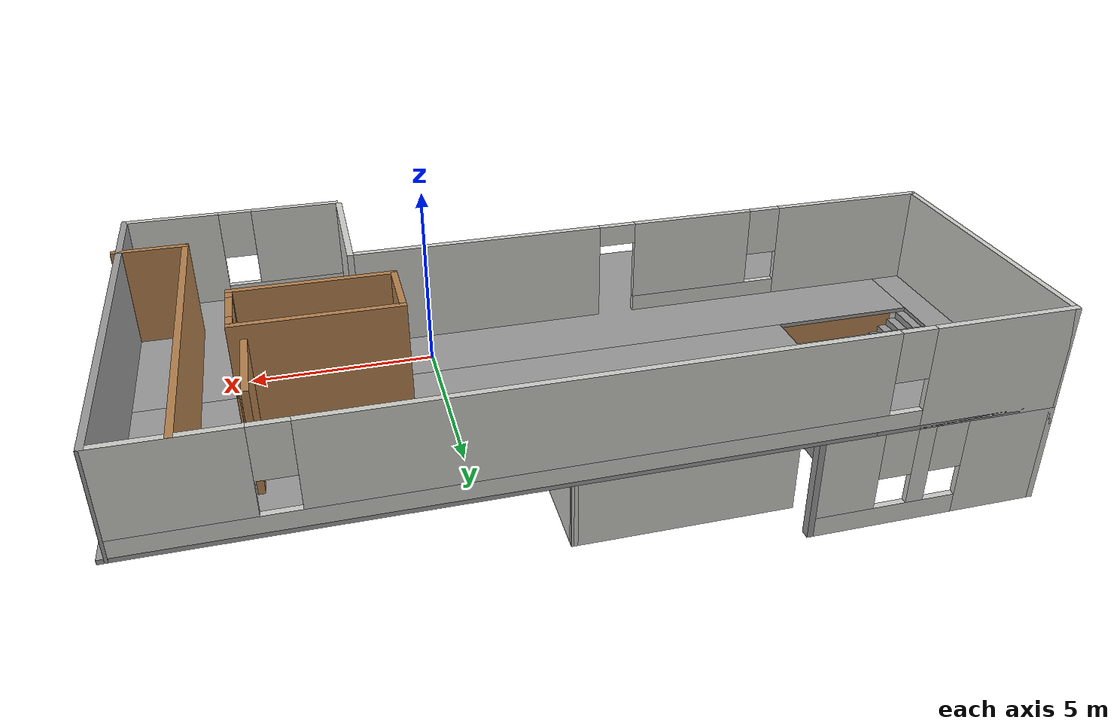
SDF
<?xml version='1.0'?>
<sdf version='1.7'>
  <model name='Building'>
    <pose>-2.51669 4.88848 0 0 -0 0</pose>
    <link name='Floor_3'>
      <pose>0 0.00168 2.5 0 -0 0</pose>
      <visual name='Floor_3_Visual_0'>
        <pose>-9.61237 0 0.05 0 -0 0</pose>
        <geometry>
          <box>
            <size>0.914633 10 0.1</size>
          </box>
        </geometry>
        <material>
          <script>
            <uri>file://media/materials/scripts/gazebo.material</uri>
            <name>Gazebo/Grey</name>
          </script>
          <ambient>1 1 1 1</ambient>
        </material>
        <meta>
          <layer>1</layer>
        </meta>
      </visual>
      <collision name='Floor_3_Collision_0'>
        <geometry>
          <box>
            <size>0.914633 10 0.1</size>
          </box>
        </geometry>
        <pose>-9.61237 0 0.05 0 -0 0</pose>
      </collision>
      <visual name='Floor_3_Visual_1'>
        <pose>0.457317 -2.44946 0.05 0 -0 0</pose>
        <geometry>
          <box>
            <size>19.2247 5.10108 0.1</size>
          </box>
        </geometry>
        <material>
          <script>
            <uri>file://media/materials/scripts/gazebo.material</uri>
            <name>Gazebo/Grey</name>
          </script>
          <ambient>1 1 1 1</ambient>
        </material>
        <meta>
          <layer>1</layer>
        </meta>
      </visual>
      <collision name='Floor_3_Collision_1'>
        <geometry>
          <box>
            <size>19.2247 5.10108 0.1</size>
          </box>
        </geometry>
        <pose>0.457317 -2.44946 0.05 0 -0 0</pose>
      </collision>
      <visual name='Floor_3_Visual_2'>
        <pose>2.20732 2.55054 0.05 0 -0 0</pose>
        <geometry>
          <box>
            <size>15.7247 4.89892 0.1</size>
          </box>
        </geometry>
        <material>
          <script>
            <uri>file://media/materials/scripts/gazebo.material</uri>
            <name>Gazebo/Grey</name>
          </script>
          <ambient>1 1 1 1</ambient>
        </material>
        <meta>
          <layer>1</layer>
        </meta>
      </visual>
      <collision name='Floor_3_Collision_2'>
        <geometry>
          <box>
            <size>15.7247 4.89892 0.1</size>
          </box>
        </geometry>
        <pose>2.20732 2.55054 0.05 0 -0 0</pose>
      </collision>
      <visual name='Floor_3_Visual_3'>
        <pose>-7.40505 3.05054 0.05 0 -0 0</pose>
        <geometry>
          <box>
            <size>3.5 3.89892 0.1</size>
          </box>
        </geometry>
        <material>
          <script>
            <uri>file://media/materials/scripts/gazebo.material</uri>
            <name>Gazebo/Grey</name>
          </script>
          <ambient>1 1 1 1</ambient>
        </material>
        <meta>
          <layer>1</layer>
        </meta>
      </visual>
      <collision name='Floor_3_Collision_3'>
        <geometry>
          <box>
            <size>3.5 3.89892 0.1</size>
          </box>
        </geometry>
        <pose>-7.40505 3.05054 0.05 0 -0 0</pose>
      </collision>
    </link>
    <link name='Stairs_2'>
      <visual name='Stairs_2_Visual_0'>
        <pose>-5.77172 0.602758 0.083333 0 -0 -1.5708</pose>
        <geometry>
          <box>
            <size>1 0.233333 0.166667</size>
          </box>
        </geometry>
        <material>
          <script>
            <uri>file://media/materials/scripts/gazebo.material</uri>
            <name>Gazebo/Grey</name>
          </script>
          <ambient>1 1 1 1</ambient>
        </material>
        <meta>
          <layer>0</layer>
        </meta>
      </visual>
      <collision name='Stairs_2_Collision_0'>
        <geometry>
          <box>
            <size>1 0.233333 0.166667</size>
          </box>
        </geometry>
        <pose>-5.77172 0.602758 0.083333 0 -0 -1.5708</pose>
      </collision>
      <visual name='Stairs_2_Visual_1'>
        <pose>-6.00505 0.602758 0.25 0 -0 -1.5708</pose>
        <geometry>
          <box>
            <size>1 0.233333 0.166667</size>
          </box>
        </geometry>
        <material>
          <script>
            <uri>file://media/materials/scripts/gazebo.material</uri>
            <name>Gazebo/Grey</name>
          </script>
          <ambient>1 1 1 1</ambient>
        </material>
        <meta>
          <layer>0</layer>
        </meta>
      </visual>
      <collision name='Stairs_2_Collision_1'>
        <geometry>
          <box>
            <size>1 0.233333 0.166667</size>
          </box>
        </geometry>
        <pose>-6.00505 0.602758 0.25 0 -0 -1.5708</pose>
      </collision>
      <visual name='Stairs_2_Visual_2'>
        <pose>-6.23839 0.602758 0.416667 0 -0 -1.5708</pose>
        <geometry>
          <box>
            <size>1 0.233333 0.166667</size>
          </box>
        </geometry>
        <material>
          <script>
            <uri>file://media/materials/scripts/gazebo.material</uri>
            <name>Gazebo/Grey</name>
          </script>
          <ambient>1 1 1 1</ambient>
        </material>
        <meta>
          <layer>0</layer>
        </meta>
      </visual>
      <collision name='Stairs_2_Collision_2'>
        <geometry>
          <box>
            <size>1 0.233333 0.166667</size>
          </box>
        </geometry>
        <pose>-6.23839 0.602758 0.416667 0 -0 -1.5708</pose>
      </collision>
      <visual name='Stairs_2_Visual_3'>
        <pose>-6.47172 0.602758 0.583333 0 -0 -1.5708</pose>
        <geometry>
          <box>
            <size>1 0.233333 0.166667</size>
          </box>
        </geometry>
        <material>
          <script>
            <uri>file://media/materials/scripts/gazebo.material</uri>
            <name>Gazebo/Grey</name>
          </script>
          <ambient>1 1 1 1</ambient>
        </material>
        <meta>
          <layer>0</layer>
        </meta>
      </visual>
      <collision name='Stairs_2_Collision_3'>
        <geometry>
          <box>
            <size>1 0.233333 0.166667</size>
          </box>
        </geometry>
        <pose>-6.47172 0.602758 0.583333 0 -0 -1.5708</pose>
      </collision>
      <visual name='Stairs_2_Visual_4'>
        <pose>-6.70505 0.602758 0.75 0 -0 -1.5708</pose>
        <geometry>
          <box>
            <size>1 0.233333 0.166667</size>
          </box>
        </geometry>
        <material>
          <script>
            <uri>file://media/materials/scripts/gazebo.material</uri>
            <name>Gazebo/Grey</name>
          </script>
          <ambient>1 1 1 1</ambient>
        </material>
        <meta>
          <layer>0</layer>
        </meta>
      </visual>
      <collision name='Stairs_2_Collision_4'>
        <geometry>
          <box>
            <size>1 0.233333 0.166667</size>
          </box>
        </geometry>
        <pose>-6.70505 0.602758 0.75 0 -0 -1.5708</pose>
      </collision>
      <visual name='Stairs_2_Visual_5'>
        <pose>-6.93839 0.602758 0.916667 0 -0 -1.5708</pose>
        <geometry>
          <box>
            <size>1 0.233333 0.166667</size>
          </box>
        </geometry>
        <material>
          <script>
            <uri>file://media/materials/scripts/gazebo.material</uri>
            <name>Gazebo/Grey</name>
          </script>
          <ambient>1 1 1 1</ambient>
        </material>
        <meta>
          <layer>0</layer>
        </meta>
      </visual>
      <collision name='Stairs_2_Collision_5'>
        <geometry>
          <box>
            <size>1 0.233333 0.166667</size>
          </box>
        </geometry>
        <pose>-6.93839 0.602758 0.916667 0 -0 -1.5708</pose>
      </collision>
      <visual name='Stairs_2_Visual_6'>
        <pose>-7.17172 0.602758 1.08333 0 -0 -1.5708</pose>
        <geometry>
          <box>
            <size>1 0.233333 0.166667</size>
          </box>
        </geometry>
        <material>
          <script>
            <uri>file://media/materials/scripts/gazebo.material</uri>
            <name>Gazebo/Grey</name>
          </script>
          <ambient>1 1 1 1</ambient>
        </material>
        <meta>
          <layer>0</layer>
        </meta>
      </visual>
      <collision name='Stairs_2_Collision_6'>
        <geometry>
          <box>
            <size>1 0.233333 0.166667</size>
          </box>
        </geometry>
        <pose>-7.17172 0.602758 1.08333 0 -0 -1.5708</pose>
      </collision>
      <visual name='Stairs_2_Visual_7'>
        <pose>-7.40505 0.602758 1.25 0 -0 -1.5708</pose>
        <geometry>
          <box>
            <size>1 0.233333 0.166667</size>
          </box>
        </geometry>
        <material>
          <script>
            <uri>file://media/materials/scripts/gazebo.material</uri>
            <name>Gazebo/Grey</name>
          </script>
          <ambient>1 1 1 1</ambient>
        </material>
        <meta>
          <layer>0</layer>
        </meta>
      </visual>
      <collision name='Stairs_2_Collision_7'>
        <geometry>
          <box>
            <size>1 0.233333 0.166667</size>
          </box>
        </geometry>
        <pose>-7.40505 0.602758 1.25 0 -0 -1.5708</pose>
      </collision>
      <visual name='Stairs_2_Visual_8'>
        <pose>-7.63839 0.602758 1.41667 0 -0 -1.5708</pose>
        <geometry>
          <box>
            <size>1 0.233333 0.166667</size>
          </box>
        </geometry>
        <material>
          <script>
            <uri>file://media/materials/scripts/gazebo.material</uri>
            <name>Gazebo/Grey</name>
          </script>
          <ambient>1 1 1 1</ambient>
        </material>
        <meta>
          <layer>0</layer>
        </meta>
      </visual>
      <collision name='Stairs_2_Collision_8'>
        <geometry>
          <box>
            <size>1 0.233333 0.166667</size>
          </box>
        </geometry>
        <pose>-7.63839 0.602758 1.41667 0 -0 -1.5708</pose>
      </collision>
      <visual name='Stairs_2_Visual_9'>
        <pose>-7.87172 0.602758 1.58333 0 -0 -1.5708</pose>
        <geometry>
          <box>
            <size>1 0.233333 0.166667</size>
          </box>
        </geometry>
        <material>
          <script>
            <uri>file://media/materials/scripts/gazebo.material</uri>
            <name>Gazebo/Grey</name>
          </script>
          <ambient>1 1 1 1</ambient>
        </material>
        <meta>
          <layer>0</layer>
        </meta>
      </visual>
      <collision name='Stairs_2_Collision_9'>
        <geometry>
          <box>
            <size>1 0.233333 0.166667</size>
          </box>
        </geometry>
        <pose>-7.87172 0.602758 1.58333 0 -0 -1.5708</pose>
      </collision>
      <visual name='Stairs_2_Visual_10'>
        <pose>-8.10505 0.602758 1.75 0 -0 -1.5708</pose>
        <geometry>
          <box>
            <size>1 0.233333 0.166667</size>
          </box>
        </geometry>
        <material>
          <script>
            <uri>file://media/materials/scripts/gazebo.material</uri>
            <name>Gazebo/Grey</name>
          </script>
          <ambient>1 1 1 1</ambient>
        </material>
        <meta>
          <layer>0</layer>
        </meta>
      </visual>
      <collision name='Stairs_2_Collision_10'>
        <geometry>
          <box>
            <size>1 0.233333 0.166667</size>
          </box>
        </geometry>
        <pose>-8.10505 0.602758 1.75 0 -0 -1.5708</pose>
      </collision>
      <visual name='Stairs_2_Visual_11'>
        <pose>-8.33839 0.602758 1.91667 0 -0 -1.5708</pose>
        <geometry>
          <box>
            <size>1 0.233333 0.166667</size>
          </box>
        </geometry>
        <material>
          <script>
            <uri>file://media/materials/scripts/gazebo.material</uri>
            <name>Gazebo/Grey</name>
          </script>
          <ambient>1 1 1 1</ambient>
        </material>
        <meta>
          <layer>0</layer>
        </meta>
      </visual>
      <collision name='Stairs_2_Collision_11'>
        <geometry>
          <box>
            <size>1 0.233333 0.166667</size>
          </box>
        </geometry>
        <pose>-8.33839 0.602758 1.91667 0 -0 -1.5708</pose>
      </collision>
      <visual name='Stairs_2_Visual_12'>
        <pose>-8.57172 0.602758 2.08333 0 -0 -1.5708</pose>
        <geometry>
          <box>
            <size>1 0.233333 0.166667</size>
          </box>
        </geometry>
        <material>
          <script>
            <uri>file://media/materials/scripts/gazebo.material</uri>
            <name>Gazebo/Grey</name>
          </script>
          <ambient>1 1 1 1</ambient>
        </material>
        <meta>
          <layer>0</layer>
        </meta>
      </visual>
      <collision name='Stairs_2_Collision_12'>
        <geometry>
          <box>
            <size>1 0.233333 0.166667</size>
          </box>
        </geometry>
        <pose>-8.57172 0.602758 2.08333 0 -0 -1.5708</pose>
      </collision>
      <visual name='Stairs_2_Visual_13'>
        <pose>-8.80505 0.602758 2.25 0 -0 -1.5708</pose>
        <geometry>
          <box>
            <size>1 0.233333 0.166667</size>
          </box>
        </geometry>
        <material>
          <script>
            <uri>file://media/materials/scripts/gazebo.material</uri>
            <name>Gazebo/Grey</name>
          </script>
          <ambient>1 1 1 1</ambient>
        </material>
        <meta>
          <layer>0</layer>
        </meta>
      </visual>
      <collision name='Stairs_2_Collision_13'>
        <geometry>
          <box>
            <size>1 0.233333 0.166667</size>
          </box>
        </geometry>
        <pose>-8.80505 0.602758 2.25 0 -0 -1.5708</pose>
      </collision>
      <visual name='Stairs_2_Visual_14'>
        <pose>-9.03839 0.602758 2.41667 0 -0 -1.5708</pose>
        <geometry>
          <box>
            <size>1 0.233333 0.166667</size>
          </box>
        </geometry>
        <material>
          <script>
            <uri>file://media/materials/scripts/gazebo.material</uri>
            <name>Gazebo/Grey</name>
          </script>
          <ambient>1 1 1 1</ambient>
        </material>
        <meta>
          <layer>0</layer>
        </meta>
      </visual>
      <collision name='Stairs_2_Collision_14'>
        <geometry>
          <box>
            <size>1 0.233333 0.166667</size>
          </box>
        </geometry>
        <pose>-9.03839 0.602758 2.41667 0 -0 -1.5708</pose>
      </collision>
    </link>
    <link name='Wall_103'>
      <collision name='Wall_103_Collision'>
        <geometry>
          <box>
            <size>10 0.15 2.5</size>
          </box>
        </geometry>
        <pose>0 0 1.25 0 -0 0</pose>
      </collision>
      <visual name='Wall_103_Visual'>
        <pose>0 0 1.25 0 -0 0</pose>
        <geometry>
          <box>
            <size>10 0.15 2.5</size>
          </box>
        </geometry>
        <material>
          <script>
            <uri>file://media/materials/scripts/gazebo.material</uri>
            <name>Gazebo/CeilingTiled</name>
          </script>
          <ambient>1 1 1 1</ambient>
        </material>
        <meta>
          <layer>0</layer>
        </meta>
      </visual>
      <pose>-9.99469 0.00168 0 0 -0 -1.5708</pose>
    </link>
    <link name='Wall_104'>
      <pose>-0.069687 -4.92332 0 0 -0 0</pose>
      <visual name='Wall_104_Visual_0'>
        <pose>-8.92953 0 1.25 0 -0 0</pose>
        <geometry>
          <box>
            <size>2.14095 0.15 2.5</size>
          </box>
        </geometry>
        <material>
          <script>
            <uri>file://media/materials/scripts/gazebo.material</uri>
            <name>Gazebo/CeilingTiled</name>
          </script>
          <ambient>1 1 1 1</ambient>
        </material>
        <meta>
          <layer>0</layer>
        </meta>
      </visual>
      <collision name='Wall_104_Collision_0'>
        <geometry>
          <box>
            <size>2.14095 0.15 2.5</size>
          </box>
        </geometry>
        <pose>-8.92953 0 1.25 0 -0 0</pose>
      </collision>
      <visual name='Wall_104_Visual_1'>
        <pose>1.07047 0 0.25 0 -0 0</pose>
        <geometry>
          <box>
            <size>17.8591 0.15 0.5</size>
          </box>
        </geometry>
        <material>
          <script>
            <uri>file://media/materials/scripts/gazebo.material</uri>
            <name>Gazebo/CeilingTiled</name>
          </script>
          <ambient>1 1 1 1</ambient>
        </material>
        <meta>
          <layer>0</layer>
        </meta>
      </visual>
      <collision name='Wall_104_Collision_1'>
        <geometry>
          <box>
            <size>17.8591 0.15 0.5</size>
          </box>
        </geometry>
        <pose>1.07047 0 0.25 0 -0 0</pose>
      </collision>
      <visual name='Wall_104_Visual_2'>
        <pose>-4.94486 0 1.5 0 -0 0</pose>
        <geometry>
          <box>
            <size>4.22839 0.15 2</size>
          </box>
        </geometry>
        <material>
          <script>
            <uri>file://media/materials/scripts/gazebo.material</uri>
            <name>Gazebo/CeilingTiled</name>
          </script>
          <ambient>1 1 1 1</ambient>
        </material>
        <meta>
          <layer>0</layer>
        </meta>
      </visual>
      <collision name='Wall_104_Collision_2'>
        <geometry>
          <box>
            <size>4.22839 0.15 2</size>
          </box>
        </geometry>
        <pose>-4.94486 0 1.5 0 -0 0</pose>
      </collision>
      <visual name='Wall_104_Visual_3'>
        <pose>1.16967 0 1.5 0 -0 0</pose>
        <geometry>
          <box>
            <size>6.40066 0.15 2</size>
          </box>
        </geometry>
        <material>
          <script>
            <uri>file://media/materials/scripts/gazebo.material</uri>
            <name>Gazebo/CeilingTiled</name>
          </script>
          <ambient>1 1 1 1</ambient>
        </material>
        <meta>
          <layer>0</layer>
        </meta>
      </visual>
      <collision name='Wall_104_Collision_3'>
        <geometry>
          <box>
            <size>6.40066 0.15 2</size>
          </box>
        </geometry>
        <pose>1.16967 0 1.5 0 -0 0</pose>
      </collision>
      <visual name='Wall_104_Visual_4'>
        <pose>7.585 0 1.5 0 -0 0</pose>
        <geometry>
          <box>
            <size>4.83 0.15 2</size>
          </box>
        </geometry>
        <material>
          <script>
            <uri>file://media/materials/scripts/gazebo.material</uri>
            <name>Gazebo/CeilingTiled</name>
          </script>
          <ambient>1 1 1 1</ambient>
        </material>
        <meta>
          <layer>0</layer>
        </meta>
      </visual>
      <collision name='Wall_104_Collision_4'>
        <geometry>
          <box>
            <size>4.83 0.15 2</size>
          </box>
        </geometry>
        <pose>7.585 0 1.5 0 -0 0</pose>
      </collision>
      <visual name='Wall_104_Visual_5'>
        <pose>-7.45905 0 1.9 0 -0 0</pose>
        <geometry>
          <box>
            <size>0.8 0.15 1.2</size>
          </box>
        </geometry>
        <material>
          <script>
            <uri>file://media/materials/scripts/gazebo.material</uri>
            <name>Gazebo/CeilingTiled</name>
          </script>
          <ambient>1 1 1 1</ambient>
        </material>
        <meta>
          <layer>0</layer>
        </meta>
      </visual>
      <collision name='Wall_104_Collision_5'>
        <geometry>
          <box>
            <size>0.8 0.15 1.2</size>
          </box>
        </geometry>
        <pose>-7.45905 0 1.9 0 -0 0</pose>
      </collision>
      <visual name='Wall_104_Visual_6'>
        <pose>-2.43066 0 1.9 0 -0 0</pose>
        <geometry>
          <box>
            <size>0.8 0.15 1.2</size>
          </box>
        </geometry>
        <material>
          <script>
            <uri>file://media/materials/scripts/gazebo.material</uri>
            <name>Gazebo/CeilingTiled</name>
          </script>
          <ambient>1 1 1 1</ambient>
        </material>
        <meta>
          <layer>0</layer>
        </meta>
      </visual>
      <collision name='Wall_104_Collision_6'>
        <geometry>
          <box>
            <size>0.8 0.15 1.2</size>
          </box>
        </geometry>
        <pose>-2.43066 0 1.9 0 -0 0</pose>
      </collision>
      <visual name='Wall_104_Visual_7'>
        <pose>4.77 0 1.9 0 -0 0</pose>
        <geometry>
          <box>
            <size>0.8 0.15 1.2</size>
          </box>
        </geometry>
        <material>
          <script>
            <uri>file://media/materials/scripts/gazebo.material</uri>
            <name>Gazebo/CeilingTiled</name>
          </script>
          <ambient>1 1 1 1</ambient>
        </material>
        <meta>
          <layer>0</layer>
        </meta>
      </visual>
      <collision name='Wall_104_Collision_7'>
        <geometry>
          <box>
            <size>0.8 0.15 1.2</size>
          </box>
        </geometry>
        <pose>4.77 0 1.9 0 -0 0</pose>
      </collision>
    </link>
    <link name='Wall_107'>
      <pose>9.85531 -2.49832 0 0 -0 1.5708</pose>
      <visual name='Wall_107_Visual_0'>
        <pose>-0.656953 0 1.25 0 -0 0</pose>
        <geometry>
          <box>
            <size>3.68609 0.15 2.5</size>
          </box>
        </geometry>
        <material>
          <script>
            <uri>file://media/materials/scripts/gazebo.material</uri>
            <name>Gazebo/Grey</name>
          </script>
          <ambient>1 1 1 1</ambient>
        </material>
        <meta>
          <layer>0</layer>
        </meta>
      </visual>
      <collision name='Wall_107_Collision_0'>
        <geometry>
          <box>
            <size>3.68609 0.15 2.5</size>
          </box>
        </geometry>
        <pose>-0.656953 0 1.25 0 -0 0</pose>
      </collision>
      <visual name='Wall_107_Visual_1'>
        <pose>2.29305 0 1.25 0 -0 0</pose>
        <geometry>
          <box>
            <size>0.413907 0.15 2.5</size>
          </box>
        </geometry>
        <material>
          <script>
            <uri>file://media/materials/scripts/gazebo.material</uri>
            <name>Gazebo/Grey</name>
          </script>
          <ambient>1 1 1 1</ambient>
        </material>
        <meta>
          <layer>0</layer>
        </meta>
      </visual>
      <collision name='Wall_107_Collision_1'>
        <geometry>
          <box>
            <size>0.413907 0.15 2.5</size>
          </box>
        </geometry>
        <pose>2.29305 0 1.25 0 -0 0</pose>
      </collision>
      <visual name='Wall_107_Visual_2'>
        <pose>1.63609 0 2.25 0 -0 0</pose>
        <geometry>
          <box>
            <size>0.9 0.15 0.5</size>
          </box>
        </geometry>
        <material>
          <script>
            <uri>file://media/materials/scripts/gazebo.material</uri>
            <name>Gazebo/Grey</name>
          </script>
          <ambient>1 1 1 1</ambient>
        </material>
        <meta>
          <layer>0</layer>
        </meta>
      </visual>
      <collision name='Wall_107_Collision_2'>
        <geometry>
          <box>
            <size>0.9 0.15 0.5</size>
          </box>
        </geometry>
        <pose>1.63609 0 2.25 0 -0 0</pose>
      </collision>
    </link>
    <link name='Wall_110'>
      <pose>-4.58491 1.81691 0 0 -0 3.14159</pose>
      <visual name='Wall_110_Visual_0'>
        <pose>-3.4635 0 1.25 0 -0 0</pose>
        <geometry>
          <box>
            <size>3.82299 0.15 2.5</size>
          </box>
        </geometry>
        <material>
          <script>
            <uri>file://media/materials/scripts/gazebo.material</uri>
            <name>Gazebo/Wood</name>
          </script>
          <ambient>1 1 1 1</ambient>
        </material>
        <meta>
          <layer>0</layer>
        </meta>
      </visual>
      <collision name='Wall_110_Collision_0'>
        <geometry>
          <box>
            <size>3.82299 0.15 2.5</size>
          </box>
        </geometry>
        <pose>-3.4635 0 1.25 0 -0 0</pose>
      </collision>
      <visual name='Wall_110_Visual_1'>
        <pose>-0.267294 0 1.25 0 -0 0</pose>
        <geometry>
          <box>
            <size>0.769426 0.15 2.5</size>
          </box>
        </geometry>
        <material>
          <script>
            <uri>file://media/materials/scripts/gazebo.material</uri>
            <name>Gazebo/Wood</name>
          </script>
          <ambient>1 1 1 1</ambient>
        </material>
        <meta>
          <layer>0</layer>
        </meta>
      </visual>
      <collision name='Wall_110_Collision_1'>
        <geometry>
          <box>
            <size>0.769426 0.15 2.5</size>
          </box>
        </geometry>
        <pose>-0.267294 0 1.25 0 -0 0</pose>
      </collision>
      <visual name='Wall_110_Visual_2'>
        <pose>3.19621 0 1.25 0 -0 0</pose>
        <geometry>
          <box>
            <size>4.35758 0.15 2.5</size>
          </box>
        </geometry>
        <material>
          <script>
            <uri>file://media/materials/scripts/gazebo.material</uri>
            <name>Gazebo/Wood</name>
          </script>
          <ambient>1 1 1 1</ambient>
        </material>
        <meta>
          <layer>0</layer>
        </meta>
      </visual>
      <collision name='Wall_110_Collision_2'>
        <geometry>
          <box>
            <size>4.35758 0.15 2.5</size>
          </box>
        </geometry>
        <pose>3.19621 0 1.25 0 -0 0</pose>
      </collision>
      <visual name='Wall_110_Visual_3'>
        <pose>-1.10201 0 2.25 0 -0 0</pose>
        <geometry>
          <box>
            <size>0.9 0.15 0.5</size>
          </box>
        </geometry>
        <material>
          <script>
            <uri>file://media/materials/scripts/gazebo.material</uri>
            <name>Gazebo/Wood</name>
          </script>
          <ambient>1 1 1 1</ambient>
        </material>
        <meta>
          <layer>0</layer>
        </meta>
      </visual>
      <collision name='Wall_110_Collision_3'>
        <geometry>
          <box>
            <size>0.9 0.15 0.5</size>
          </box>
        </geometry>
        <pose>-1.10201 0 2.25 0 -0 0</pose>
      </collision>
      <visual name='Wall_110_Visual_4'>
        <pose>0.567419 0 2.25 0 -0 0</pose>
        <geometry>
          <box>
            <size>0.9 0.15 0.5</size>
          </box>
        </geometry>
        <material>
          <script>
            <uri>file://media/materials/scripts/gazebo.material</uri>
            <name>Gazebo/Wood</name>
          </script>
          <ambient>1 1 1 1</ambient>
        </material>
        <meta>
          <layer>0</layer>
        </meta>
      </visual>
      <collision name='Wall_110_Collision_4'>
        <geometry>
          <box>
            <size>0.9 0.15 0.5</size>
          </box>
        </geometry>
        <pose>0.567419 0 2.25 0 -0 0</pose>
      </collision>
    </link>
    <link name='Wall_112'>
      <pose>-7.19469 4.92668 0 0 -0 0</pose>
      <visual name='Wall_112_Visual_0'>
        <pose>-1.79447 0 1.25 0 -0 0</pose>
        <geometry>
          <box>
            <size>2.16106 0.15 2.5</size>
          </box>
        </geometry>
        <material>
          <script>
            <uri>file://media/materials/scripts/gazebo.material</uri>
            <name>Gazebo/CeilingTiled</name>
          </script>
          <ambient>1 1 1 1</ambient>
        </material>
        <meta>
          <layer>0</layer>
        </meta>
      </visual>
      <collision name='Wall_112_Collision_0'>
        <geometry>
          <box>
            <size>2.16106 0.15 2.5</size>
          </box>
        </geometry>
        <pose>-1.79447 0 1.25 0 -0 0</pose>
      </collision>
      <visual name='Wall_112_Visual_1'>
        <pose>1.08053 0 0.25 0 -0 0</pose>
        <geometry>
          <box>
            <size>3.58894 0.15 0.5</size>
          </box>
        </geometry>
        <material>
          <script>
            <uri>file://media/materials/scripts/gazebo.material</uri>
            <name>Gazebo/CeilingTiled</name>
          </script>
          <ambient>1 1 1 1</ambient>
        </material>
        <meta>
          <layer>0</layer>
        </meta>
      </visual>
      <collision name='Wall_112_Collision_1'>
        <geometry>
          <box>
            <size>3.58894 0.15 0.5</size>
          </box>
        </geometry>
        <pose>1.08053 0 0.25 0 -0 0</pose>
      </collision>
      <visual name='Wall_112_Visual_2'>
        <pose>0.299522 0 1.5 0 -0 0</pose>
        <geometry>
          <box>
            <size>0.426928 0.15 2</size>
          </box>
        </geometry>
        <material>
          <script>
            <uri>file://media/materials/scripts/gazebo.material</uri>
            <name>Gazebo/CeilingTiled</name>
          </script>
          <ambient>1 1 1 1</ambient>
        </material>
        <meta>
          <layer>0</layer>
        </meta>
      </visual>
      <collision name='Wall_112_Collision_2'>
        <geometry>
          <box>
            <size>0.426928 0.15 2</size>
          </box>
        </geometry>
        <pose>0.299522 0 1.5 0 -0 0</pose>
      </collision>
      <visual name='Wall_112_Visual_3'>
        <pose>2.09399 0 1.5 0 -0 0</pose>
        <geometry>
          <box>
            <size>1.56201 0.15 2</size>
          </box>
        </geometry>
        <material>
          <script>
            <uri>file://media/materials/scripts/gazebo.material</uri>
            <name>Gazebo/CeilingTiled</name>
          </script>
          <ambient>1 1 1 1</ambient>
        </material>
        <meta>
          <layer>0</layer>
        </meta>
      </visual>
      <collision name='Wall_112_Collision_3'>
        <geometry>
          <box>
            <size>1.56201 0.15 2</size>
          </box>
        </geometry>
        <pose>2.09399 0 1.5 0 -0 0</pose>
      </collision>
      <visual name='Wall_112_Visual_4'>
        <pose>-0.313942 0 1.9 0 -0 0</pose>
        <geometry>
          <box>
            <size>0.8 0.15 1.2</size>
          </box>
        </geometry>
        <material>
          <script>
            <uri>file://media/materials/scripts/gazebo.material</uri>
            <name>Gazebo/CeilingTiled</name>
          </script>
          <ambient>1 1 1 1</ambient>
        </material>
        <meta>
          <layer>0</layer>
        </meta>
      </visual>
      <collision name='Wall_112_Collision_4'>
        <geometry>
          <box>
            <size>0.8 0.15 1.2</size>
          </box>
        </geometry>
        <pose>-0.313942 0 1.9 0 -0 0</pose>
      </collision>
      <visual name='Wall_112_Visual_5'>
        <pose>0.912986 0 1.9 0 -0 0</pose>
        <geometry>
          <box>
            <size>0.8 0.15 1.2</size>
          </box>
        </geometry>
        <material>
          <script>
            <uri>file://media/materials/scripts/gazebo.material</uri>
            <name>Gazebo/CeilingTiled</name>
          </script>
          <ambient>1 1 1 1</ambient>
        </material>
        <meta>
          <layer>0</layer>
        </meta>
      </visual>
      <collision name='Wall_112_Collision_5'>
        <geometry>
          <box>
            <size>0.8 0.15 1.2</size>
          </box>
        </geometry>
        <pose>0.912986 0 1.9 0 -0 0</pose>
      </collision>
    </link>
    <link name='Wall_113'>
      <pose>-4.39469 3.37668 0 0 -0 -1.5708</pose>
      <visual name='Wall_113_Visual_0'>
        <pose>-1.5127 0 1.25 0 -0 0</pose>
        <geometry>
          <box>
            <size>0.224605 0.15 2.5</size>
          </box>
        </geometry>
        <material>
          <script>
            <uri>file://media/materials/scripts/gazebo.material</uri>
            <name>Gazebo/Grey</name>
          </script>
          <ambient>1 1 1 1</ambient>
        </material>
        <meta>
          <layer>0</layer>
        </meta>
      </visual>
      <collision name='Wall_113_Collision_0'>
        <geometry>
          <box>
            <size>0.224605 0.15 2.5</size>
          </box>
        </geometry>
        <pose>-1.5127 0 1.25 0 -0 0</pose>
      </collision>
      <visual name='Wall_113_Visual_1'>
        <pose>0.562303 0 1.25 0 -0 0</pose>
        <geometry>
          <box>
            <size>2.1254 0.15 2.5</size>
          </box>
        </geometry>
        <material>
          <script>
            <uri>file://media/materials/scripts/gazebo.material</uri>
            <name>Gazebo/Grey</name>
          </script>
          <ambient>1 1 1 1</ambient>
        </material>
        <meta>
          <layer>0</layer>
        </meta>
      </visual>
      <collision name='Wall_113_Collision_1'>
        <geometry>
          <box>
            <size>2.1254 0.15 2.5</size>
          </box>
        </geometry>
        <pose>0.562303 0 1.25 0 -0 0</pose>
      </collision>
      <visual name='Wall_113_Visual_2'>
        <pose>-0.950395 0 2.25 0 -0 0</pose>
        <geometry>
          <box>
            <size>0.9 0.15 0.5</size>
          </box>
        </geometry>
        <material>
          <script>
            <uri>file://media/materials/scripts/gazebo.material</uri>
            <name>Gazebo/Grey</name>
          </script>
          <ambient>1 1 1 1</ambient>
        </material>
        <meta>
          <layer>0</layer>
        </meta>
      </visual>
      <collision name='Wall_113_Collision_2'>
        <geometry>
          <box>
            <size>0.9 0.15 0.5</size>
          </box>
        </geometry>
        <pose>-0.950395 0 2.25 0 -0 0</pose>
      </collision>
    </link>
    <link name='Wall_115'>
      <collision name='Wall_115_Collision'>
        <geometry>
          <box>
            <size>5.30307 0.15 2.5</size>
          </box>
        </geometry>
        <pose>0 0 1.25 0 -0 0</pose>
      </collision>
      <visual name='Wall_115_Visual'>
        <pose>0 0 1.25 0 -0 0</pose>
        <geometry>
          <box>
            <size>5.30307 0.15 2.5</size>
          </box>
        </geometry>
        <material>
          <script>
            <uri>file://media/materials/scripts/gazebo.material</uri>
            <name>Gazebo/CeilingTiled</name>
          </script>
          <ambient>1 1 1 1</ambient>
        </material>
        <meta>
          <layer>0</layer>
        </meta>
      </visual>
      <pose>-1.82122 3.87699 0 0 -0 -0.000121</pose>
    </link>
    <link name='Wall_116'>
      <collision name='Wall_116_Collision'>
        <geometry>
          <box>
            <size>2.21017 0.15 2.5</size>
          </box>
        </geometry>
        <pose>0 0 1.25 0 -0 0</pose>
      </collision>
      <visual name='Wall_116_Visual'>
        <pose>0 0 1.25 0 -0 0</pose>
        <geometry>
          <box>
            <size>2.21017 0.15 2.5</size>
          </box>
        </geometry>
        <material>
          <script>
            <uri>file://media/materials/scripts/gazebo.material</uri>
            <name>Gazebo/CeilingTiled</name>
          </script>
          <ambient>1 1 1 1</ambient>
        </material>
        <meta>
          <layer>0</layer>
        </meta>
      </visual>
      <pose>0.745256 2.84679 0 0 -0 -1.58056</pose>
    </link>
    <link name='Wall_124'>
      <pose>-1.53189 0.824232 0 0 -0 -1.5708</pose>
      <visual name='Wall_124_Visual_0'>
        <pose>-0.765115 0 1.25 0 -0 0</pose>
        <geometry>
          <box>
            <size>0.46977 0.15 2.5</size>
          </box>
        </geometry>
        <material>
          <script>
            <uri>file://media/materials/scripts/gazebo.material</uri>
            <name>Gazebo/Grey</name>
          </script>
          <ambient>1 1 1 1</ambient>
        </material>
        <meta>
          <layer>0</layer>
        </meta>
      </visual>
      <collision name='Wall_124_Collision_0'>
        <geometry>
          <box>
            <size>0.46977 0.15 2.5</size>
          </box>
        </geometry>
        <pose>-0.765115 0 1.25 0 -0 0</pose>
      </collision>
      <visual name='Wall_124_Visual_1'>
        <pose>0.684885 0 1.25 0 -0 0</pose>
        <geometry>
          <box>
            <size>0.63023 0.15 2.5</size>
          </box>
        </geometry>
        <material>
          <script>
            <uri>file://media/materials/scripts/gazebo.material</uri>
            <name>Gazebo/Grey</name>
          </script>
          <ambient>1 1 1 1</ambient>
        </material>
        <meta>
          <layer>0</layer>
        </meta>
      </visual>
      <collision name='Wall_124_Collision_1'>
        <geometry>
          <box>
            <size>0.63023 0.15 2.5</size>
          </box>
        </geometry>
        <pose>0.684885 0 1.25 0 -0 0</pose>
      </collision>
      <visual name='Wall_124_Visual_2'>
        <pose>-0.08023 0 2.25 0 -0 0</pose>
        <geometry>
          <box>
            <size>0.9 0.15 0.5</size>
          </box>
        </geometry>
        <material>
          <script>
            <uri>file://media/materials/scripts/gazebo.material</uri>
            <name>Gazebo/Grey</name>
          </script>
          <ambient>1 1 1 1</ambient>
        </material>
        <meta>
          <layer>0</layer>
        </meta>
      </visual>
      <collision name='Wall_124_Collision_2'>
        <geometry>
          <box>
            <size>0.9 0.15 0.5</size>
          </box>
        </geometry>
        <pose>-0.08023 0 2.25 0 -0 0</pose>
      </collision>
    </link>
    <link name='Wall_125'>
      <collision name='Wall_125_Collision'>
        <geometry>
          <box>
            <size>11.5 0.15 2.5</size>
          </box>
        </geometry>
        <pose>0 0 1.25 0 -0 0</pose>
      </collision>
      <visual name='Wall_125_Visual'>
        <pose>0 0 1.25 0 -0 0</pose>
        <geometry>
          <box>
            <size>11.5 0.15 2.5</size>
          </box>
        </geometry>
        <material>
          <script>
            <uri>file://media/materials/scripts/gazebo.material</uri>
            <name>Gazebo/Grey</name>
          </script>
          <ambient>1 1 1 1</ambient>
        </material>
        <meta>
          <layer>0</layer>
        </meta>
      </visual>
      <pose>4.14311 -0.100768 0 0 -0 0</pose>
    </link>
    <link name='Wall_127'>
      <collision name='Wall_127_Collision'>
        <geometry>
          <box>
            <size>2.04066 0.15 2.5</size>
          </box>
        </geometry>
        <pose>0 0 1.25 0 -0 0</pose>
      </collision>
      <visual name='Wall_127_Visual'>
        <pose>0 0 1.25 0 -0 0</pose>
        <geometry>
          <box>
            <size>2.04066 0.15 2.5</size>
          </box>
        </geometry>
        <material>
          <script>
            <uri>file://media/materials/scripts/gazebo.material</uri>
            <name>Gazebo/CeilingTiled</name>
          </script>
          <ambient>1 1 1 1</ambient>
        </material>
        <meta>
          <layer>0</layer>
        </meta>
      </visual>
      <pose>0.745256 0.871794 0 0 -0 -1.56016</pose>
    </link>
    <link name='Wall_129'>
      <pose>-0.053852 -1.7015 0 0 -0 3.14159</pose>
      <visual name='Wall_129_Visual_0'>
        <pose>-7.48284 0 1.25 0 -0 0</pose>
        <geometry>
          <box>
            <size>5.03432 0.15 2.5</size>
          </box>
        </geometry>
        <material>
          <script>
            <uri>file://media/materials/scripts/gazebo.material</uri>
            <name>Gazebo/Wood</name>
          </script>
          <ambient>1 1 1 1</ambient>
        </material>
        <meta>
          <layer>0</layer>
        </meta>
      </visual>
      <collision name='Wall_129_Collision_0'>
        <geometry>
          <box>
            <size>5.03432 0.15 2.5</size>
          </box>
        </geometry>
        <pose>-7.48284 0 1.25 0 -0 0</pose>
      </collision>
      <visual name='Wall_129_Visual_1'>
        <pose>-0.120355 0 1.25 0 -0 0</pose>
        <geometry>
          <box>
            <size>7.89066 0.15 2.5</size>
          </box>
        </geometry>
        <material>
          <script>
            <uri>file://media/materials/scripts/gazebo.material</uri>
            <name>Gazebo/Wood</name>
          </script>
          <ambient>1 1 1 1</ambient>
        </material>
        <meta>
          <layer>0</layer>
        </meta>
      </visual>
      <collision name='Wall_129_Collision_1'>
        <geometry>
          <box>
            <size>7.89066 0.15 2.5</size>
          </box>
        </geometry>
        <pose>-0.120355 0 1.25 0 -0 0</pose>
      </collision>
      <visual name='Wall_129_Visual_2'>
        <pose>7.36249 0 1.25 0 -0 0</pose>
        <geometry>
          <box>
            <size>5.27503 0.15 2.5</size>
          </box>
        </geometry>
        <material>
          <script>
            <uri>file://media/materials/scripts/gazebo.material</uri>
            <name>Gazebo/Wood</name>
          </script>
          <ambient>1 1 1 1</ambient>
        </material>
        <meta>
          <layer>0</layer>
        </meta>
      </visual>
      <collision name='Wall_129_Collision_2'>
        <geometry>
          <box>
            <size>5.27503 0.15 2.5</size>
          </box>
        </geometry>
        <pose>7.36249 0 1.25 0 -0 0</pose>
      </collision>
      <visual name='Wall_129_Visual_3'>
        <pose>-4.51568 0 2.25 0 -0 0</pose>
        <geometry>
          <box>
            <size>0.9 0.15 0.5</size>
          </box>
        </geometry>
        <material>
          <script>
            <uri>file://media/materials/scripts/gazebo.material</uri>
            <name>Gazebo/Wood</name>
          </script>
          <ambient>1 1 1 1</ambient>
        </material>
        <meta>
          <layer>0</layer>
        </meta>
      </visual>
      <collision name='Wall_129_Collision_3'>
        <geometry>
          <box>
            <size>0.9 0.15 0.5</size>
          </box>
        </geometry>
        <pose>-4.51568 0 2.25 0 -0 0</pose>
      </collision>
      <visual name='Wall_129_Visual_4'>
        <pose>4.27497 0 2.25 0 -0 0</pose>
        <geometry>
          <box>
            <size>0.9 0.15 0.5</size>
          </box>
        </geometry>
        <material>
          <script>
            <uri>file://media/materials/scripts/gazebo.material</uri>
            <name>Gazebo/Wood</name>
          </script>
          <ambient>1 1 1 1</ambient>
        </material>
        <meta>
          <layer>0</layer>
        </meta>
      </visual>
      <collision name='Wall_129_Collision_4'>
        <geometry>
          <box>
            <size>0.9 0.15 0.5</size>
          </box>
        </geometry>
        <pose>4.27497 0 2.25 0 -0 0</pose>
      </collision>
    </link>
    <link name='Wall_131'>
      <collision name='Wall_131_Collision'>
        <geometry>
          <box>
            <size>3.25 0.15 2.5</size>
          </box>
        </geometry>
        <pose>0 0 1.25 0 -0 0</pose>
      </collision>
      <visual name='Wall_131_Visual'>
        <pose>0 0 1.25 0 -0 0</pose>
        <geometry>
          <box>
            <size>3.25 0.15 2.5</size>
          </box>
        </geometry>
        <material>
          <script>
            <uri>file://media/materials/scripts/gazebo.material</uri>
            <name>Gazebo/Grey</name>
          </script>
          <ambient>1 1 1 1</ambient>
        </material>
        <meta>
          <layer>0</layer>
        </meta>
      </visual>
      <pose>-0.406887 -3.29173 0 0 -0 -1.5708</pose>
    </link>
    <link name='Wall_133'>
      <collision name='Wall_133_Collision'>
        <geometry>
          <box>
            <size>1.25 0.15 2.5</size>
          </box>
        </geometry>
        <pose>0 0 1.25 0 -0 0</pose>
      </collision>
      <visual name='Wall_133_Visual'>
        <pose>0 0 1.25 0 -0 0</pose>
        <geometry>
          <box>
            <size>1.25 0.15 2.5</size>
          </box>
        </geometry>
        <material>
          <script>
            <uri>file://media/materials/scripts/gazebo.material</uri>
            <name>Gazebo/Wood</name>
          </script>
          <ambient>1 1 1 1</ambient>
        </material>
        <meta>
          <layer>0</layer>
        </meta>
      </visual>
      <pose>-5.15369 -2.27161 0 0 -0 -1.5708</pose>
    </link>
    <link name='Wall_135'>
      <collision name='Wall_135_Collision'>
        <geometry>
          <box>
            <size>1.25 0.15 2.5</size>
          </box>
        </geometry>
        <pose>0 0 1.25 0 -0 0</pose>
      </collision>
      <visual name='Wall_135_Visual'>
        <pose>0 0 1.25 0 -0 0</pose>
        <geometry>
          <box>
            <size>1.25 0.15 2.5</size>
          </box>
        </geometry>
        <material>
          <script>
            <uri>file://media/materials/scripts/gazebo.material</uri>
            <name>Gazebo/Grey</name>
          </script>
          <ambient>1 1 1 1</ambient>
        </material>
        <meta>
          <layer>0</layer>
        </meta>
      </visual>
      <pose>-5.11968 -4.37692 0 0 -0 1.5708</pose>
    </link>
    <link name='Wall_187'>
      <pose>-2.6349 -1.6724 2.5 0 -0 0</pose>
      <visual name='Wall_187_Visual_0'>
        <pose>-5.45618 0 1.25 0 -0 0</pose>
        <geometry>
          <box>
            <size>3.83764 0.15 2.5</size>
          </box>
        </geometry>
        <material>
          <script>
            <uri>file://media/materials/scripts/gazebo.material</uri>
            <name>Gazebo/CeilingTiled</name>
          </script>
          <ambient>1 1 1 1</ambient>
        </material>
        <meta>
          <layer>1</layer>
        </meta>
      </visual>
      <collision name='Wall_187_Collision_0'>
        <geometry>
          <box>
            <size>3.83764 0.15 2.5</size>
          </box>
        </geometry>
        <pose>-5.45618 0 1.25 0 -0 0</pose>
      </collision>
      <visual name='Wall_187_Visual_1'>
        <pose>4.3027 0 1.25 0 -0 0</pose>
        <geometry>
          <box>
            <size>6.14459 0.15 2.5</size>
          </box>
        </geometry>
        <material>
          <script>
            <uri>file://media/materials/scripts/gazebo.material</uri>
            <name>Gazebo/CeilingTiled</name>
          </script>
          <ambient>1 1 1 1</ambient>
        </material>
        <meta>
          <layer>1</layer>
        </meta>
      </visual>
      <collision name='Wall_187_Collision_1'>
        <geometry>
          <box>
            <size>6.14459 0.15 2.5</size>
          </box>
        </geometry>
        <pose>4.3027 0 1.25 0 -0 0</pose>
      </collision>
      <visual name='Wall_187_Visual_2'>
        <pose>-1.60348 0 0.25 0 -0 0</pose>
        <geometry>
          <box>
            <size>3.86777 0.15 0.5</size>
          </box>
        </geometry>
        <material>
          <script>
            <uri>file://media/materials/scripts/gazebo.material</uri>
            <name>Gazebo/CeilingTiled</name>
          </script>
          <ambient>1 1 1 1</ambient>
        </material>
        <meta>
          <layer>1</layer>
        </meta>
      </visual>
      <collision name='Wall_187_Collision_2'>
        <geometry>
          <box>
            <size>3.86777 0.15 0.5</size>
          </box>
        </geometry>
        <pose>-1.60348 0 0.25 0 -0 0</pose>
      </collision>
      <visual name='Wall_187_Visual_3'>
        <pose>-1.20348 0 1.5 0 -0 0</pose>
        <geometry>
          <box>
            <size>3.06777 0.15 2</size>
          </box>
        </geometry>
        <material>
          <script>
            <uri>file://media/materials/scripts/gazebo.material</uri>
            <name>Gazebo/CeilingTiled</name>
          </script>
          <ambient>1 1 1 1</ambient>
        </material>
        <meta>
          <layer>1</layer>
        </meta>
      </visual>
      <collision name='Wall_187_Collision_3'>
        <geometry>
          <box>
            <size>3.06777 0.15 2</size>
          </box>
        </geometry>
        <pose>-1.20348 0 1.5 0 -0 0</pose>
      </collision>
      <visual name='Wall_187_Visual_4'>
        <pose>-3.13736 0 1.9 0 -0 0</pose>
        <geometry>
          <box>
            <size>0.8 0.15 1.2</size>
          </box>
        </geometry>
        <material>
          <script>
            <uri>file://media/materials/scripts/gazebo.material</uri>
            <name>Gazebo/CeilingTiled</name>
          </script>
          <ambient>1 1 1 1</ambient>
        </material>
        <meta>
          <layer>1</layer>
        </meta>
      </visual>
      <collision name='Wall_187_Collision_4'>
        <geometry>
          <box>
            <size>0.8 0.15 1.2</size>
          </box>
        </geometry>
        <pose>-3.13736 0 1.9 0 -0 0</pose>
      </collision>
      <visual name='Wall_187_Visual_5'>
        <pose>0.780409 0 2.25 0 -0 0</pose>
        <geometry>
          <box>
            <size>0.9 0.15 0.5</size>
          </box>
        </geometry>
        <material>
          <script>
            <uri>file://media/materials/scripts/gazebo.material</uri>
            <name>Gazebo/CeilingTiled</name>
          </script>
          <ambient>1 1 1 1</ambient>
        </material>
        <meta>
          <layer>1</layer>
        </meta>
      </visual>
      <collision name='Wall_187_Collision_5'>
        <geometry>
          <box>
            <size>0.9 0.15 0.5</size>
          </box>
        </geometry>
        <pose>0.780409 0 2.25 0 -0 0</pose>
      </collision>
    </link>
    <link name='Wall_188'>
      <collision name='Wall_188_Collision'>
        <geometry>
          <box>
            <size>3.25 0.15 2.5</size>
          </box>
        </geometry>
        <pose>0 0 1.25 0 -0 0</pose>
      </collision>
      <visual name='Wall_188_Visual'>
        <pose>0 0 1.25 0 -0 0</pose>
        <geometry>
          <box>
            <size>3.25 0.15 2.5</size>
          </box>
        </geometry>
        <material>
          <script>
            <uri>file://media/materials/scripts/gazebo.material</uri>
            <name>Gazebo/CeilingTiled</name>
          </script>
          <ambient>1 1 1 1</ambient>
        </material>
        <meta>
          <layer>1</layer>
        </meta>
      </visual>
      <pose>4.6651 -3.2224 2.5 0 -0 -1.5708</pose>
    </link>
    <link name='Wall_190'>
      <pose>7.3228 -4.92332 2.5 0 -0 3.14159</pose>
      <visual name='Wall_190_Visual_0'>
        <pose>-1.48876 0 1.25 0 -0 0</pose>
        <geometry>
          <box>
            <size>2.30746 0.15 2.5</size>
          </box>
        </geometry>
        <material>
          <script>
            <uri>file://media/materials/scripts/gazebo.material</uri>
            <name>Gazebo/CeilingTiled</name>
          </script>
          <ambient>1 1 1 1</ambient>
        </material>
        <meta>
          <layer>1</layer>
        </meta>
      </visual>
      <collision name='Wall_190_Collision_0'>
        <geometry>
          <box>
            <size>2.30746 0.15 2.5</size>
          </box>
        </geometry>
        <pose>-1.48876 0 1.25 0 -0 0</pose>
      </collision>
      <visual name='Wall_190_Visual_1'>
        <pose>1.15373 0 0.25 0 -0 0</pose>
        <geometry>
          <box>
            <size>2.97752 0.15 0.5</size>
          </box>
        </geometry>
        <material>
          <script>
            <uri>file://media/materials/scripts/gazebo.material</uri>
            <name>Gazebo/CeilingTiled</name>
          </script>
          <ambient>1 1 1 1</ambient>
        </material>
        <meta>
          <layer>1</layer>
        </meta>
      </visual>
      <collision name='Wall_190_Collision_1'>
        <geometry>
          <box>
            <size>2.97752 0.15 0.5</size>
          </box>
        </geometry>
        <pose>1.15373 0 0.25 0 -0 0</pose>
      </collision>
      <visual name='Wall_190_Visual_2'>
        <pose>1.55373 0 1.5 0 -0 0</pose>
        <geometry>
          <box>
            <size>2.17752 0.15 2</size>
          </box>
        </geometry>
        <material>
          <script>
            <uri>file://media/materials/scripts/gazebo.material</uri>
            <name>Gazebo/CeilingTiled</name>
          </script>
          <ambient>1 1 1 1</ambient>
        </material>
        <meta>
          <layer>1</layer>
        </meta>
      </visual>
      <collision name='Wall_190_Collision_2'>
        <geometry>
          <box>
            <size>2.17752 0.15 2</size>
          </box>
        </geometry>
        <pose>1.55373 0 1.5 0 -0 0</pose>
      </collision>
      <visual name='Wall_190_Visual_3'>
        <pose>0.064969 0 1.9 0 -0 0</pose>
        <geometry>
          <box>
            <size>0.8 0.15 1.2</size>
          </box>
        </geometry>
        <material>
          <script>
            <uri>file://media/materials/scripts/gazebo.material</uri>
            <name>Gazebo/CeilingTiled</name>
          </script>
          <ambient>1 1 1 1</ambient>
        </material>
        <meta>
          <layer>1</layer>
        </meta>
      </visual>
      <collision name='Wall_190_Collision_3'>
        <geometry>
          <box>
            <size>0.8 0.15 1.2</size>
          </box>
        </geometry>
        <pose>0.064969 0 1.9 0 -0 0</pose>
      </collision>
    </link>
    <link name='Wall_192'>
      <pose>-0.069687 4.92668 2.5 0 -0 0</pose>
      <visual name='Wall_192_Visual_0'>
        <pose>-8.29615 0 1.25 0 -0 0</pose>
        <geometry>
          <box>
            <size>3.4077 0.15 2.5</size>
          </box>
        </geometry>
        <material>
          <script>
            <uri>file://media/materials/scripts/gazebo.material</uri>
            <name>Gazebo/CeilingTiled</name>
          </script>
          <ambient>1 1 1 1</ambient>
        </material>
        <meta>
          <layer>1</layer>
        </meta>
      </visual>
      <collision name='Wall_192_Collision_0'>
        <geometry>
          <box>
            <size>3.4077 0.15 2.5</size>
          </box>
        </geometry>
        <pose>-8.29615 0 1.25 0 -0 0</pose>
      </collision>
      <visual name='Wall_192_Visual_1'>
        <pose>1.70385 0 0.25 0 -0 0</pose>
        <geometry>
          <box>
            <size>16.5923 0.15 0.5</size>
          </box>
        </geometry>
        <material>
          <script>
            <uri>file://media/materials/scripts/gazebo.material</uri>
            <name>Gazebo/CeilingTiled</name>
          </script>
          <ambient>1 1 1 1</ambient>
        </material>
        <meta>
          <layer>1</layer>
        </meta>
      </visual>
      <collision name='Wall_192_Collision_1'>
        <geometry>
          <box>
            <size>16.5923 0.15 0.5</size>
          </box>
        </geometry>
        <pose>1.70385 0 0.25 0 -0 0</pose>
      </collision>
      <visual name='Wall_192_Visual_2'>
        <pose>0.296516 0 1.5 0 -0 0</pose>
        <geometry>
          <box>
            <size>12.1776 0.15 2</size>
          </box>
        </geometry>
        <material>
          <script>
            <uri>file://media/materials/scripts/gazebo.material</uri>
            <name>Gazebo/CeilingTiled</name>
          </script>
          <ambient>1 1 1 1</ambient>
        </material>
        <meta>
          <layer>1</layer>
        </meta>
      </visual>
      <collision name='Wall_192_Collision_2'>
        <geometry>
          <box>
            <size>12.1776 0.15 2</size>
          </box>
        </geometry>
        <pose>0.296516 0 1.5 0 -0 0</pose>
      </collision>
      <visual name='Wall_192_Visual_3'>
        <pose>8.59266 0 1.5 0 -0 0</pose>
        <geometry>
          <box>
            <size>2.81467 0.15 2</size>
          </box>
        </geometry>
        <material>
          <script>
            <uri>file://media/materials/scripts/gazebo.material</uri>
            <name>Gazebo/CeilingTiled</name>
          </script>
          <ambient>1 1 1 1</ambient>
        </material>
        <meta>
          <layer>1</layer>
        </meta>
      </visual>
      <collision name='Wall_192_Collision_3'>
        <geometry>
          <box>
            <size>2.81467 0.15 2</size>
          </box>
        </geometry>
        <pose>8.59266 0 1.5 0 -0 0</pose>
      </collision>
      <visual name='Wall_192_Visual_4'>
        <pose>-6.1923 0 1.9 0 -0 0</pose>
        <geometry>
          <box>
            <size>0.8 0.15 1.2</size>
          </box>
        </geometry>
        <material>
          <script>
            <uri>file://media/materials/scripts/gazebo.material</uri>
            <name>Gazebo/CeilingTiled</name>
          </script>
          <ambient>1 1 1 1</ambient>
        </material>
        <meta>
          <layer>1</layer>
        </meta>
      </visual>
      <collision name='Wall_192_Collision_4'>
        <geometry>
          <box>
            <size>0.8 0.15 1.2</size>
          </box>
        </geometry>
        <pose>-6.1923 0 1.9 0 -0 0</pose>
      </collision>
      <visual name='Wall_192_Visual_5'>
        <pose>6.78533 0 1.9 0 -0 0</pose>
        <geometry>
          <box>
            <size>0.8 0.15 1.2</size>
          </box>
        </geometry>
        <material>
          <script>
            <uri>file://media/materials/scripts/gazebo.material</uri>
            <name>Gazebo/CeilingTiled</name>
          </script>
          <ambient>1 1 1 1</ambient>
        </material>
        <meta>
          <layer>1</layer>
        </meta>
      </visual>
      <collision name='Wall_192_Collision_5'>
        <geometry>
          <box>
            <size>0.8 0.15 1.2</size>
          </box>
        </geometry>
        <pose>6.78533 0 1.9 0 -0 0</pose>
      </collision>
    </link>
    <link name='Wall_194'>
      <collision name='Wall_194_Collision'>
        <geometry>
          <box>
            <size>10 0.15 2.5</size>
          </box>
        </geometry>
        <pose>0 0 1.25 0 -0 0</pose>
      </collision>
      <visual name='Wall_194_Visual'>
        <pose>0 0 1.25 0 -0 0</pose>
        <geometry>
          <box>
            <size>10 0.15 2.5</size>
          </box>
        </geometry>
        <material>
          <script>
            <uri>file://media/materials/scripts/gazebo.material</uri>
            <name>Gazebo/Grey</name>
          </script>
          <ambient>1 1 1 1</ambient>
        </material>
        <meta>
          <layer>1</layer>
        </meta>
      </visual>
      <pose>9.8728 0.00168 2.5 0 -0 1.57435</pose>
    </link>
    <link name='Wall_196'>
      <collision name='Wall_196_Collision'>
        <geometry>
          <box>
            <size>1.75 0.15 2.5</size>
          </box>
        </geometry>
        <pose>0 0 1.25 0 -0 0</pose>
      </collision>
      <visual name='Wall_196_Visual'>
        <pose>0 0 1.25 0 -0 0</pose>
        <geometry>
          <box>
            <size>1.75 0.15 2.5</size>
          </box>
        </geometry>
        <material>
          <script>
            <uri>file://media/materials/scripts/gazebo.material</uri>
            <name>Gazebo/Wood</name>
          </script>
          <ambient>1 1 1 1</ambient>
        </material>
        <meta>
          <layer>1</layer>
        </meta>
      </visual>
      <pose>3.7948 0.326015 2.5 0 -0 -1.5708</pose>
    </link>
    <link name='Wall_197'>
      <collision name='Wall_197_Collision'>
        <geometry>
          <box>
            <size>3.75 0.15 2.5</size>
          </box>
        </geometry>
        <pose>0 0 1.25 0 -0 0</pose>
      </collision>
      <visual name='Wall_197_Visual'>
        <pose>0 0 1.25 0 -0 0</pose>
        <geometry>
          <box>
            <size>3.75 0.15 2.5</size>
          </box>
        </geometry>
        <material>
          <script>
            <uri>file://media/materials/scripts/gazebo.material</uri>
            <name>Gazebo/Wood</name>
          </script>
          <ambient>1 1 1 1</ambient>
        </material>
        <meta>
          <layer>1</layer>
        </meta>
      </visual>
      <pose>5.5948 -0.473984 2.5 0 -0 0</pose>
    </link>
    <link name='Wall_198'>
      <pose>7.3948 0.326015 2.5 0 -0 1.5708</pose>
      <visual name='Wall_198_Visual_0'>
        <pose>-0.682262 0 1.25 0 -0 0</pose>
        <geometry>
          <box>
            <size>0.385477 0.15 2.5</size>
          </box>
        </geometry>
        <material>
          <script>
            <uri>file://media/materials/scripts/gazebo.material</uri>
            <name>Gazebo/Wood</name>
          </script>
          <ambient>1 1 1 1</ambient>
        </material>
        <meta>
          <layer>1</layer>
        </meta>
      </visual>
      <collision name='Wall_198_Collision_0'>
        <geometry>
          <box>
            <size>0.385477 0.15 2.5</size>
          </box>
        </geometry>
        <pose>-0.682262 0 1.25 0 -0 0</pose>
      </collision>
      <visual name='Wall_198_Visual_1'>
        <pose>0.642738 0 1.25 0 -0 0</pose>
        <geometry>
          <box>
            <size>0.464523 0.15 2.5</size>
          </box>
        </geometry>
        <material>
          <script>
            <uri>file://media/materials/scripts/gazebo.material</uri>
            <name>Gazebo/Wood</name>
          </script>
          <ambient>1 1 1 1</ambient>
        </material>
        <meta>
          <layer>1</layer>
        </meta>
      </visual>
      <collision name='Wall_198_Collision_1'>
        <geometry>
          <box>
            <size>0.464523 0.15 2.5</size>
          </box>
        </geometry>
        <pose>0.642738 0 1.25 0 -0 0</pose>
      </collision>
      <visual name='Wall_198_Visual_2'>
        <pose>-0.039523 0 2.25 0 -0 0</pose>
        <geometry>
          <box>
            <size>0.9 0.15 0.5</size>
          </box>
        </geometry>
        <material>
          <script>
            <uri>file://media/materials/scripts/gazebo.material</uri>
            <name>Gazebo/Wood</name>
          </script>
          <ambient>1 1 1 1</ambient>
        </material>
        <meta>
          <layer>1</layer>
        </meta>
      </visual>
      <collision name='Wall_198_Collision_2'>
        <geometry>
          <box>
            <size>0.9 0.15 0.5</size>
          </box>
        </geometry>
        <pose>-0.039523 0 2.25 0 -0 0</pose>
      </collision>
    </link>
    <link name='Wall_199'>
      <collision name='Wall_199_Collision'>
        <geometry>
          <box>
            <size>3.75 0.15 2.5</size>
          </box>
        </geometry>
        <pose>0 0 1.25 0 -0 0</pose>
      </collision>
      <visual name='Wall_199_Visual'>
        <pose>0 0 1.25 0 -0 0</pose>
        <geometry>
          <box>
            <size>3.75 0.15 2.5</size>
          </box>
        </geometry>
        <material>
          <script>
            <uri>file://media/materials/scripts/gazebo.material</uri>
            <name>Gazebo/Wood</name>
          </script>
          <ambient>1 1 1 1</ambient>
        </material>
        <meta>
          <layer>1</layer>
        </meta>
      </visual>
      <pose>5.5948 1.12602 2.5 0 -0 3.14159</pose>
    </link>
    <link name='Wall_201'>
      <collision name='Wall_201_Collision'>
        <geometry>
          <box>
            <size>2 0.15 2.5</size>
          </box>
        </geometry>
        <pose>0 0 1.25 0 -0 0</pose>
      </collision>
      <visual name='Wall_201_Visual'>
        <pose>0 0 1.25 0 -0 0</pose>
        <geometry>
          <box>
            <size>2 0.15 2.5</size>
          </box>
        </geometry>
        <material>
          <script>
            <uri>file://media/materials/scripts/gazebo.material</uri>
            <name>Gazebo/Wood</name>
          </script>
          <ambient>1 1 1 1</ambient>
        </material>
        <meta>
          <layer>1</layer>
        </meta>
      </visual>
      <pose>7.10042 2.78954 2.5 0 -0 -1.5708</pose>
    </link>
    <link name='Wall_203'>
      <collision name='Wall_203_Collision'>
        <geometry>
          <box>
            <size>8.25 0.15 2.5</size>
          </box>
        </geometry>
        <pose>0 0 1.25 0 -0 0</pose>
      </collision>
      <visual name='Wall_203_Visual'>
        <pose>0 0 1.25 0 -0 0</pose>
        <geometry>
          <box>
            <size>8.25 0.15 2.5</size>
          </box>
        </geometry>
        <material>
          <script>
            <uri>file://media/materials/scripts/gazebo.material</uri>
            <name>Gazebo/Wood</name>
          </script>
          <ambient>1 1 1 1</ambient>
        </material>
        <meta>
          <layer>1</layer>
        </meta>
      </visual>
      <pose>8.39469 0.871359 2.5 0 -0 -1.5708</pose>
    </link>
    <link name='Wall_204'>
      <collision name='Wall_204_Collision'>
        <geometry>
          <box>
            <size>1.75 0.15 2.5</size>
          </box>
        </geometry>
        <pose>0 0 1.25 0 -0 0</pose>
      </collision>
      <visual name='Wall_204_Visual'>
        <pose>0 0 1.25 0 -0 0</pose>
        <geometry>
          <box>
            <size>1.75 0.15 2.5</size>
          </box>
        </geometry>
        <material>
          <script>
            <uri>file://media/materials/scripts/gazebo.material</uri>
            <name>Gazebo/Wood</name>
          </script>
          <ambient>1 1 1 1</ambient>
        </material>
        <meta>
          <layer>1</layer>
        </meta>
      </visual>
      <pose>9.19469 -3.17864 2.5 0 -0 0</pose>
    </link>
    <link name='Wall_206'>
      <collision name='Wall_206_Collision'>
        <geometry>
          <box>
            <size>6.75 0.15 2.5</size>
          </box>
        </geometry>
        <pose>0 0 1.25 0 -0 0</pose>
      </collision>
      <visual name='Wall_206_Visual'>
        <pose>0 0 1.25 0 -0 0</pose>
        <geometry>
          <box>
            <size>6.75 0.15 2.5</size>
          </box>
        </geometry>
        <material>
          <script>
            <uri>file://media/materials/scripts/gazebo.material</uri>
            <name>Gazebo/CeilingTiled</name>
          </script>
          <ambient>1 1 1 1</ambient>
        </material>
        <meta>
          <layer>1</layer>
        </meta>
      </visual>
      <pose>-9.99469 1.62668 2.5 0 -0 -1.5708</pose>
    </link>
    <static>1</static>
  </model>
</sdf>
